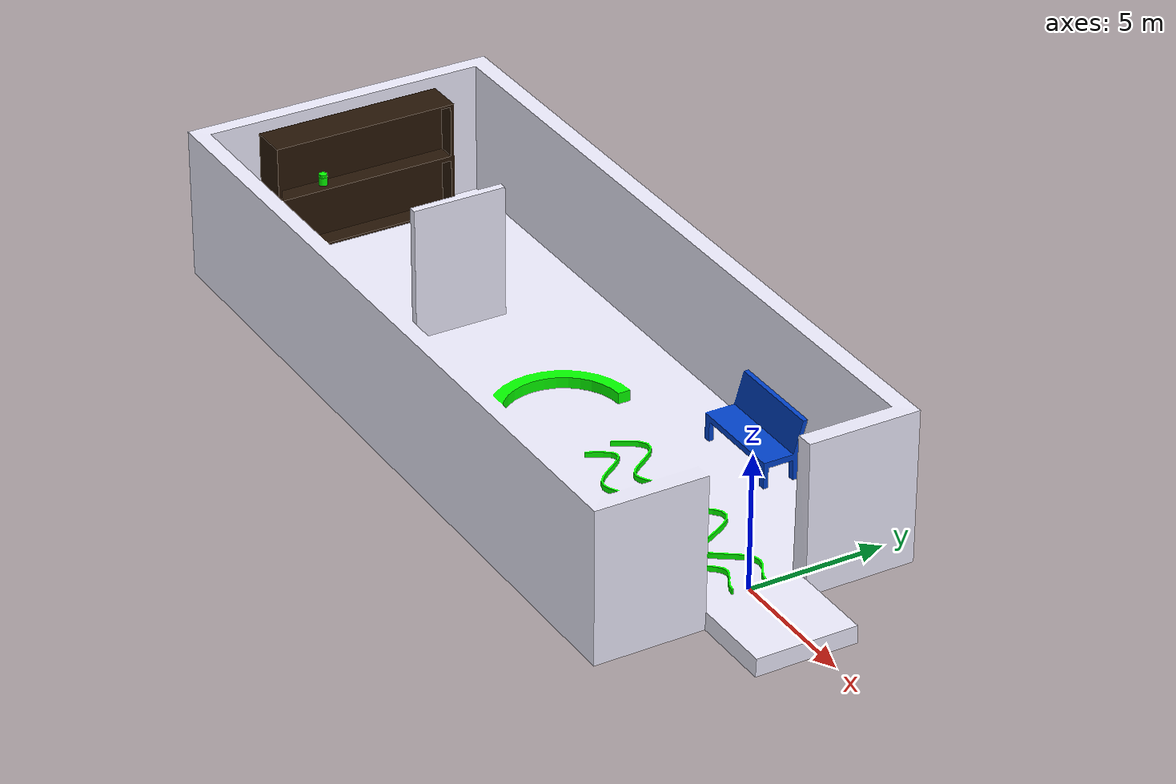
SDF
<?xml version ="1.0"?>
<sdf version="1.6">
  <model name="arena_task3">
    <pose>0 0 0  0 0 0</pose>
    <static>true</static>
    <link name="link">
      <collision name="colision2">
        <geometry>
          <mesh>
            <uri>model://arena_task3/meshes/Map2_triangulated.dae</uri>
            <scale>1 1 1</scale>
          </mesh>
        </geometry>
      </collision>

      <visual name="visual2">
        <cast_shadows>true</cast_shadows>
        <geometry>
          <mesh>
            <uri>model://arena_task3/meshes/Map2_triangulated.dae</uri>
            <scale>1 1 1</scale>
          </mesh>
        </geometry>
      </visual>

    </link>
  </model>
</sdf>
